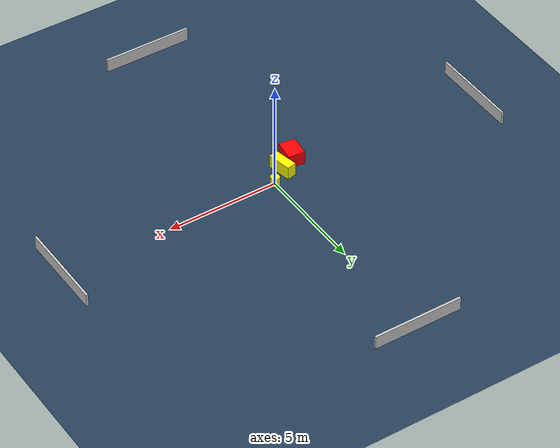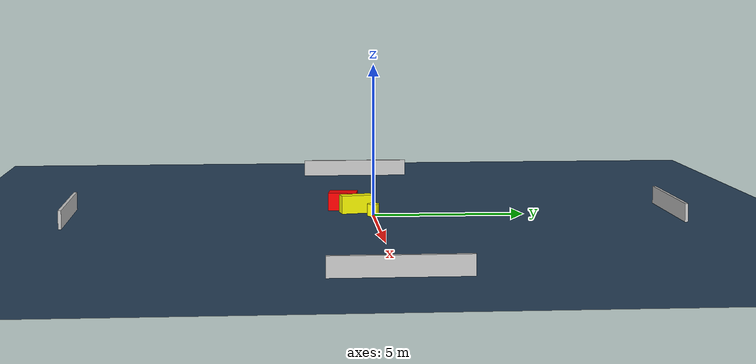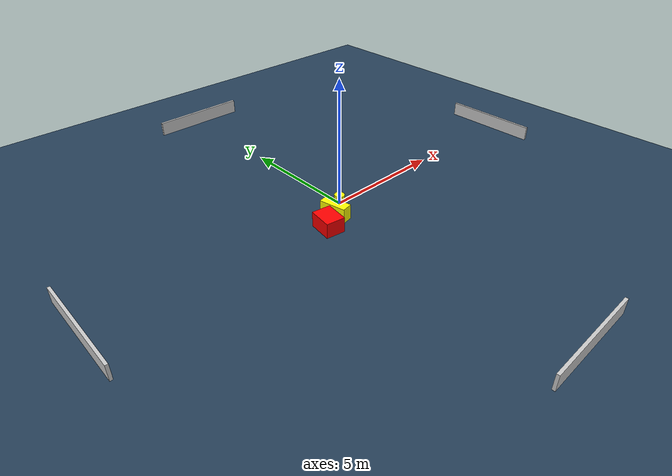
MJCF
<?xml version="1.0" ?>
<mujoco model="generated_environment">
  <option timestep="0.01" integrator="RK4" cone="elliptic"/>
  <default>
    <geom density="1"/>
  </default>
  <asset>
    <texture builtin="gradient" height="3072" name="skybox" rgb1="0.3 0.5 0.7" rgb2="0 0 0" type="skybox" width="512"/>
    <texture builtin="checker" height="300" name="groundplane" rgb1="0.2 0.3 0.4" rgb2="0.1 0.2 0.3" type="2d" width="300"/>
    <material name="groundplane" reflectance="0.2" texrepeat="5 5" texture="groundplane"/>
  </asset>
  <worldbody>
    <light dir="0 0 -1" directional="true" pos="0 0 1.5"/>
    <geom condim="3" friction="0.5 0.005 0.001" material="groundplane" name="floor" pos="0 0 0" size="0 0 0.05" type="plane"/>
    <body name="walls">
      <geom name="wall_1" condim="4" pos="-10.0 0.0 0.3" rgba="0.800000011920929 0.800000011920929 0.800000011920929 1.0" size="0.05 2.0 0.3" type="box"/>
      <geom name="wall_2" condim="4" pos="10.0 0.0 0.3" rgba="0.800000011920929 0.800000011920929 0.800000011920929 1.0" size="0.05 2.0 0.3" type="box"/>
      <geom name="wall_3" condim="4" pos="0.0 -10.0 0.3" rgba="0.800000011920929 0.800000011920929 0.800000011920929 1.0" size="2.0 0.05 0.3" type="box"/>
      <geom name="wall_4" condim="4" pos="0.0 10.0 0.3" rgba="0.800000011920929 0.800000011920929 0.800000011920929 1.0" size="2.0 0.05 0.3" type="box"/>
    </body>
    <body name="robot">
      <joint name="joint_x" type="slide" pos="0 0 0" axis="1 0 0"/>
      <joint name="joint_y" type="slide" pos="0 0 0" axis="0 1 0"/>
      <geom name="robot" type="cylinder" pos="0.0 0.0 0.2" size="0.2 0.2 0.0" mass="5.0" friction="1.0 0.005 0.0001" condim="4" rgba="1.0 1.0 0.0 1.0"/>
    </body>
    <body name="obstacle_1_movable">
      <geom name="obstacle_1_movable" condim="4" pos="-0.7058122412617448 -0.5226045111463938 0.3" euler="0 0 101.14709787368956" friction="0.0 0.005 0.001" rgba="1.0 1.0 0.0 1.0" size="0.5366986510669238 0.21762741218384885 0.3" type="box" mass="0.1"/>
      <joint type="free"/>
    </body>
    <body name="obstacle_2_static">
      <geom name="obstacle_2_static" condim="4" pos="-1.426597511095829 -0.929541396125019 0.3" euler="0 0 261.6511770272509" friction="0.0 0.005 0.001" rgba="1.0 0.0 0.0 1.0" size="0.4733451425177872 0.37323458491063055 0.3" type="box"/>
    </body>
  </worldbody>
  <actuator>
    <motor name="actuator_x" joint="joint_x" gear="1" ctrlrange="-1 1"/>
    <motor name="actuator_y" joint="joint_y" gear="1" ctrlrange="-1 1"/>
  </actuator>
</mujoco>
